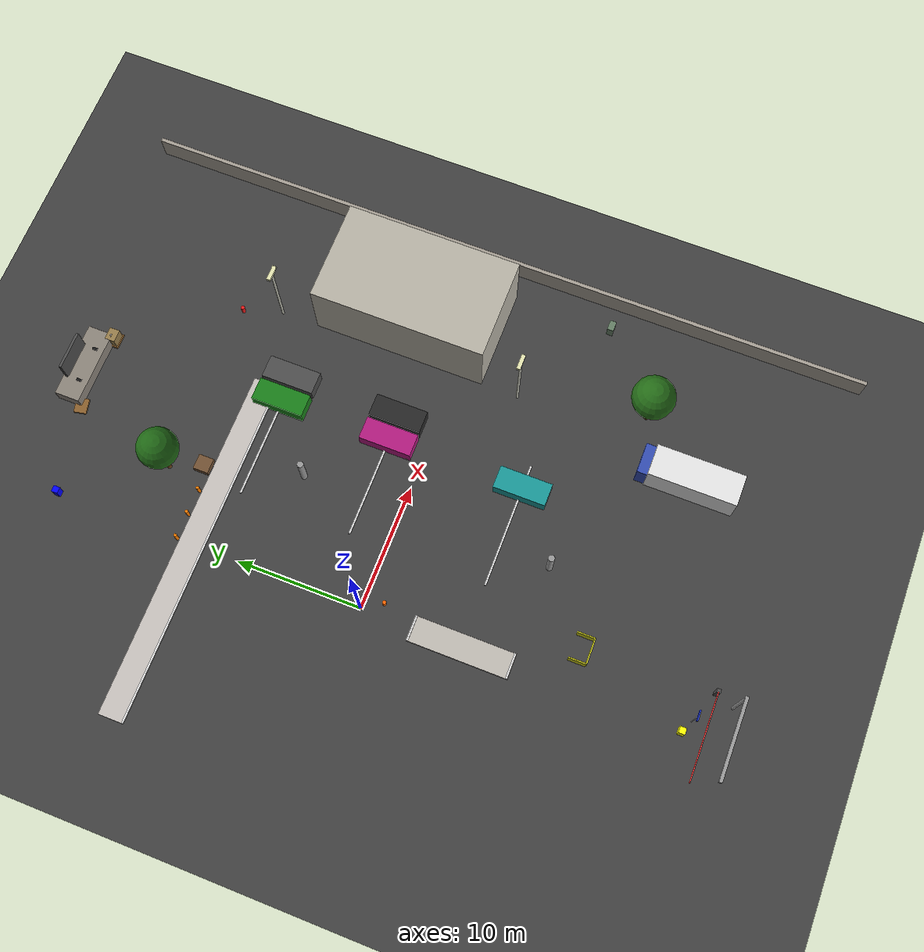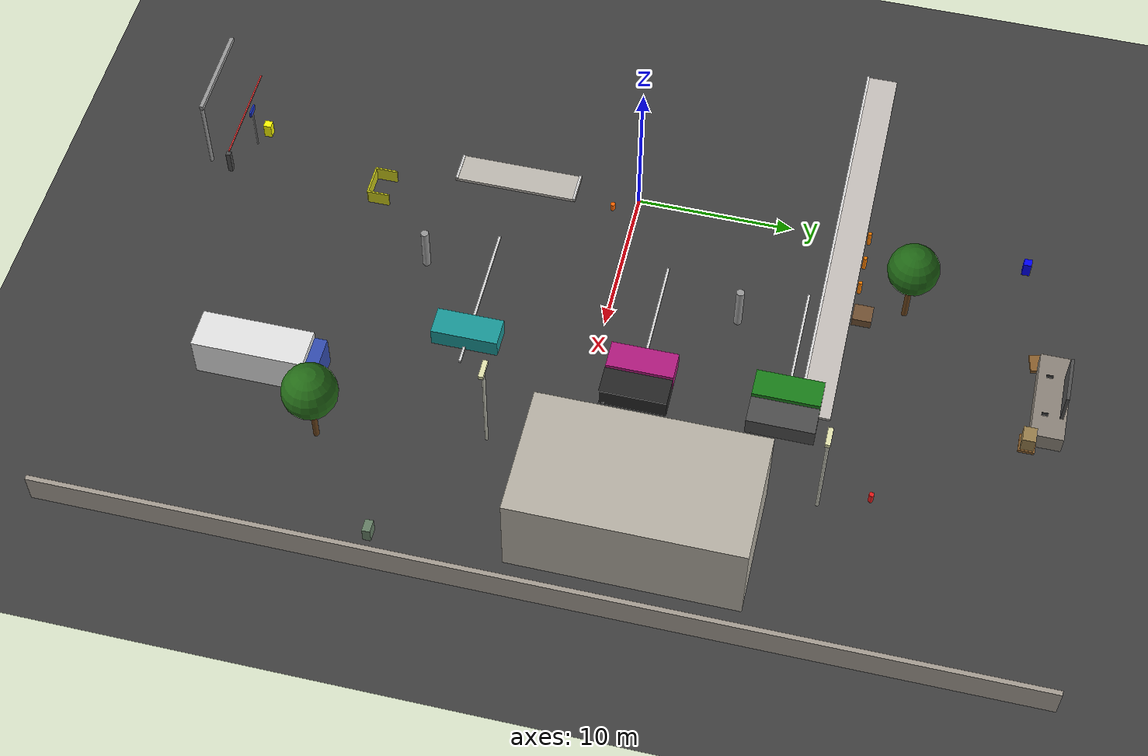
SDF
<sdf version="1.9">
 <world name="togo_parking_lot">
  <model name="ground_plane">
   <static>true</static>
   <link name="link">
    <collision name="collision">
     <geometry><plane><normal>0 0 1</normal><size>200 200</size></plane></geometry>
    </collision>
    <visual name="visual">
     <geometry><plane><normal>0 0 1</normal><size>200 200</size></plane></geometry>
     <material><ambient>0.2 0.2 0.2 1</ambient><diffuse>0.25 0.25 0.25 1</diffuse></material>
    </visual>
   </link>
  </model>
  <model name="wall_east">
   <static>true</static>
   <pose>30 0 1 0 0 0</pose>
   <link name="link">
    <collision name="collision"><geometry><box><size>0.3 60 2</size></box></geometry></collision>
    <visual name="visual">
     <geometry><box><size>0.3 60 2</size></box></geometry>
     <material><ambient>0.65 0.62 0.58 1</ambient><diffuse>0.65 0.62 0.58 1</diffuse></material>
    </visual>
   </link>
  </model>
  <model name="building_side_east">
   <static>true</static>
   <pose>24 5 3 0 0 0</pose>
   <link name="link">
    <collision name="collision"><geometry><box><size>8 14 6</size></box></geometry></collision>
    <visual name="visual">
     <geometry><box><size>8 14 6</size></box></geometry>
     <material><ambient>0.72 0.70 0.65 1</ambient><diffuse>0.72 0.70 0.65 1</diffuse></material>
    </visual>
   </link>
  </model>
  <model name="curb_row_a_east">
   <static>true</static>
   <pose>10 12 0.08 0 0 0</pose>
   <link name="link">
    <collision name="collision"><geometry><box><size>10 0.15 0.16</size></box></geometry></collision>
    <visual name="visual">
     <geometry><box><size>10 0.15 0.16</size></box></geometry>
     <material><ambient>0.85 0.85 0.85 1</ambient><diffuse>0.85 0.85 0.85 1</diffuse></material>
    </visual>
   </link>
  </model>
  <model name="curb_row_b_east">
   <static>true</static>
   <pose>10 3 0.08 0 0 0</pose>
   <link name="link">
    <collision name="collision"><geometry><box><size>10 0.15 0.16</size></box></geometry></collision>
    <visual name="visual">
     <geometry><box><size>10 0.15 0.16</size></box></geometry>
     <material><ambient>0.85 0.85 0.85 1</ambient><diffuse>0.85 0.85 0.85 1</diffuse></material>
    </visual>
   </link>
  </model>
  <model name="curb_row_c_east">
   <static>true</static>
   <pose>10 -8 0.08 0 0 0</pose>
   <link name="link">
    <collision name="collision"><geometry><box><size>10 0.15 0.16</size></box></geometry></collision>
    <visual name="visual">
     <geometry><box><size>10 0.15 0.16</size></box></geometry>
     <material><ambient>0.85 0.85 0.85 1</ambient><diffuse>0.85 0.85 0.85 1</diffuse></material>
    </visual>
   </link>
  </model>
  <model name="car_a4">
   <static>true</static>
   <pose>13 12 0.4 0 0 0</pose>
   <link name="link">
    <collision name="collision"><geometry><box><size>1.8 4.2 1.5</size></box></geometry></collision>
    <visual name="visual">
     <geometry><box><size>1.8 4.2 1.5</size></box></geometry>
     <material><ambient>0.1 0.5 0.1 1</ambient><diffuse>0.1 0.5 0.1 1</diffuse></material>
    </visual>
   </link>
  </model>
  <model name="car_a5">
   <static>true</static>
   <pose>15 12 0.4 0 0 0</pose>
   <link name="link">
    <collision name="collision"><geometry><box><size>1.8 4.2 1.5</size></box></geometry></collision>
    <visual name="visual">
     <geometry><box><size>1.8 4.2 1.5</size></box></geometry>
     <material><ambient>0.3 0.3 0.3 1</ambient><diffuse>0.3 0.3 0.3 1</diffuse></material>
    </visual>
   </link>
  </model>
  <model name="car_b3">
   <static>true</static>
   <pose>13 3 0.4 0 0 0</pose>
   <link name="link">
    <collision name="collision"><geometry><box><size>1.8 4.2 1.5</size></box></geometry></collision>
    <visual name="visual">
     <geometry><box><size>1.8 4.2 1.5</size></box></geometry>
     <material><ambient>0.7 0.1 0.5 1</ambient><diffuse>0.7 0.1 0.5 1</diffuse></material>
    </visual>
   </link>
  </model>
  <model name="car_b4">
   <static>true</static>
   <pose>15 3 0.4 0 0 0</pose>
   <link name="link">
    <collision name="collision"><geometry><box><size>1.8 4.2 1.6</size></box></geometry></collision>
    <visual name="visual">
     <geometry><box><size>1.8 4.2 1.6</size></box></geometry>
     <material><ambient>0.15 0.15 0.15 1</ambient><diffuse>0.15 0.15 0.15 1</diffuse></material>
    </visual>
   </link>
  </model>
  <model name="car_c3">
   <static>true</static>
   <pose>13 -8 0.4 0 0 0</pose>
   <link name="link">
    <collision name="collision"><geometry><box><size>1.8 4.2 1.5</size></box></geometry></collision>
    <visual name="visual">
     <geometry><box><size>1.8 4.2 1.5</size></box></geometry>
     <material><ambient>0.1 0.6 0.6 1</ambient><diffuse>0.1 0.6 0.6 1</diffuse></material>
    </visual>
   </link>
  </model>
  <model name="lightpole_1">
   <static>true</static>
   <pose>20 15 3.5 0 0 0</pose>
   <link name="link">
    <collision name="collision">
     <geometry><cylinder><radius>0.1</radius><length>7</length></cylinder></geometry>
    </collision>
    <visual name="visual">
     <geometry><cylinder><radius>0.1</radius><length>7</length></cylinder></geometry>
     <material><ambient>0.7 0.7 0.65 1</ambient><diffuse>0.7 0.7 0.65 1</diffuse></material>
    </visual>
   </link>
  </model>
  <model name="lightpole_1_head">
   <static>true</static>
   <pose>20 15 7.2 0 0 0</pose>
   <link name="link">
    <collision name="collision"><geometry><box><size>1.2 0.3 0.25</size></box></geometry></collision>
    <visual name="visual">
     <geometry><box><size>1.2 0.3 0.25</size></box></geometry>
     <material><ambient>0.9 0.9 0.7 1</ambient><diffuse>0.9 0.9 0.7 1</diffuse></material>
    </visual>
   </link>
  </model>
  <model name="lightpole_3">
   <static>true</static>
   <pose>20 -5 3.5 0 0 0</pose>
   <link name="link">
    <collision name="collision">
     <geometry><cylinder><radius>0.1</radius><length>7</length></cylinder></geometry>
    </collision>
    <visual name="visual">
     <geometry><cylinder><radius>0.1</radius><length>7</length></cylinder></geometry>
     <material><ambient>0.7 0.7 0.65 1</ambient><diffuse>0.7 0.7 0.65 1</diffuse></material>
    </visual>
   </link>
  </model>
  <model name="lightpole_3_head">
   <static>true</static>
   <pose>20 -5 7.2 0 0 0</pose>
   <link name="link">
    <collision name="collision"><geometry><box><size>1.2 0.3 0.25</size></box></geometry></collision>
    <visual name="visual">
     <geometry><box><size>1.2 0.3 0.25</size></box></geometry>
     <material><ambient>0.9 0.9 0.7 1</ambient><diffuse>0.9 0.9 0.7 1</diffuse></material>
    </visual>
   </link>
  </model>
  <model name="tree_1_trunk">
   <static>true</static>
   <pose>5 18 1.2 0 0 0</pose>
   <link name="link">
    <collision name="collision">
     <geometry><cylinder><radius>0.18</radius><length>2.4</length></cylinder></geometry>
    </collision>
    <visual name="visual">
     <geometry><cylinder><radius>0.18</radius><length>2.4</length></cylinder></geometry>
     <material><ambient>0.4 0.25 0.1 1</ambient><diffuse>0.4 0.25 0.1 1</diffuse></material>
    </visual>
   </link>
  </model>
  <model name="tree_1_canopy">
   <static>true</static>
   <pose>5 18 4.5 0 0 0</pose>
   <link name="link">
    <collision name="collision"><geometry><sphere><radius>1.6</radius></sphere></geometry></collision>
    <visual name="visual">
     <geometry><sphere><radius>1.6</radius></sphere></geometry>
     <material><ambient>0.12 0.40 0.08 1</ambient><diffuse>0.12 0.40 0.08 1</diffuse></material>
    </visual>
   </link>
  </model>
  <model name="tree_3_trunk">
   <static>true</static>
   <pose>22 -15 1.2 0 0 0</pose>
   <link name="link">
    <collision name="collision">
     <geometry><cylinder><radius>0.18</radius><length>2.4</length></cylinder></geometry>
    </collision>
    <visual name="visual">
     <geometry><cylinder><radius>0.18</radius><length>2.4</length></cylinder></geometry>
     <material><ambient>0.4 0.25 0.1 1</ambient><diffuse>0.4 0.25 0.1 1</diffuse></material>
    </visual>
   </link>
  </model>
  <model name="tree_3_canopy">
   <static>true</static>
   <pose>22 -15 4.5 0 0 0</pose>
   <link name="link">
    <collision name="collision"><geometry><sphere><radius>1.7</radius></sphere></geometry></collision>
    <visual name="visual">
     <geometry><sphere><radius>1.7</radius></sphere></geometry>
     <material><ambient>0.14 0.42 0.09 1</ambient><diffuse>0.14 0.42 0.09 1</diffuse></material>
    </visual>
   </link>
  </model>
  <model name="planter_right">
   <static>true</static>
   <pose>6 15.5 0.3 0 0 0</pose>
   <link name="link">
    <collision name="collision"><geometry><box><size>1.2 1.2 0.6</size></box></geometry></collision>
    <visual name="visual">
     <geometry><box><size>1.2 1.2 0.6</size></box></geometry>
     <material><ambient>0.45 0.32 0.2 1</ambient><diffuse>0.45 0.32 0.2 1</diffuse></material>
    </visual>
   </link>
  </model>
  <model name="pillar_ne">
   <static>true</static>
   <pose>8 8 1.5 0 0 0</pose>
   <link name="link">
    <collision name="collision">
     <geometry><cylinder><radius>0.25</radius><length>3.0</length></cylinder></geometry>
    </collision>
    <visual name="visual">
     <geometry><cylinder><radius>0.25</radius><length>3.0</length></cylinder></geometry>
     <material><ambient>0.6 0.6 0.6 1</ambient><diffuse>0.6 0.6 0.6 1</diffuse></material>
    </visual>
   </link>
  </model>
  <model name="pillar_se">
   <static>true</static>
   <pose>8 -12 1.5 0 0 0</pose>
   <link name="link">
    <collision name="collision">
     <geometry><cylinder><radius>0.25</radius><length>3.0</length></cylinder></geometry>
    </collision>
    <visual name="visual">
     <geometry><cylinder><radius>0.25</radius><length>3.0</length></cylinder></geometry>
     <material><ambient>0.6 0.6 0.6 1</ambient><diffuse>0.6 0.6 0.6 1</diffuse></material>
    </visual>
   </link>
  </model>
  <model name="corral_1_back">
   <static>true</static>
   <pose>3 -17 0.5 0 0 0</pose>
   <link name="link">
    <collision name="collision"><geometry><box><size>2.0 0.1 1.0</size></box></geometry></collision>
    <visual name="visual">
     <geometry><box><size>2.0 0.1 1.0</size></box></geometry>
     <material><ambient>0.8 0.8 0.1 1</ambient><diffuse>0.8 0.8 0.1 1</diffuse></material>
    </visual>
   </link>
  </model>
  <model name="corral_1_left">
   <static>true</static>
   <pose>2.0 -16.3 0.5 0 0 0</pose>
   <link name="link">
    <collision name="collision"><geometry><box><size>0.1 1.4 1.0</size></box></geometry></collision>
    <visual name="visual">
     <geometry><box><size>0.1 1.4 1.0</size></box></geometry>
     <material><ambient>0.8 0.8 0.1 1</ambient><diffuse>0.8 0.8 0.1 1</diffuse></material>
    </visual>
   </link>
  </model>
  <model name="corral_1_right">
   <static>true</static>
   <pose>4.0 -16.3 0.5 0 0 0</pose>
   <link name="link">
    <collision name="collision"><geometry><box><size>0.1 1.4 1.0</size></box></geometry></collision>
    <visual name="visual">
     <geometry><box><size>0.1 1.4 1.0</size></box></geometry>
     <material><ambient>0.8 0.8 0.1 1</ambient><diffuse>0.8 0.8 0.1 1</diffuse></material>
    </visual>
   </link>
  </model>
  <model name="hydrant_1">
   <static>true</static>
   <pose>19 18 0.35 0 0 0</pose>
   <link name="link">
    <collision name="collision">
     <geometry><cylinder><radius>0.15</radius><length>0.7</length></cylinder></geometry>
    </collision>
    <visual name="visual">
     <geometry><cylinder><radius>0.15</radius><length>0.7</length></cylinder></geometry>
     <material><ambient>0.9 0.1 0.1 1</ambient><diffuse>0.9 0.1 0.1 1</diffuse></material>
    </visual>
   </link>
  </model>
  <model name="sign_pole_1">
   <static>true</static>
   <pose>1 -25.5 1.5 0 0 0</pose>
   <link name="link">
    <collision name="collision">
     <geometry><cylinder><radius>0.05</radius><length>3.0</length></cylinder></geometry>
    </collision>
    <visual name="visual">
     <geometry><cylinder><radius>0.05</radius><length>3.0</length></cylinder></geometry>
     <material><ambient>0.7 0.7 0.7 1</ambient><diffuse>0.7 0.7 0.7 1</diffuse></material>
    </visual>
   </link>
  </model>
  <model name="sign_board_1">
   <static>true</static>
   <pose>1 -25.5 3.2 0 0 0</pose>
   <link name="link">
    <collision name="collision"><geometry><box><size>0.8 0.1 0.4</size></box></geometry></collision>
    <visual name="visual">
     <geometry><box><size>0.8 0.1 0.4</size></box></geometry>
     <material><ambient>0.1 0.2 0.8 1</ambient><diffuse>0.1 0.2 0.8 1</diffuse></material>
    </visual>
   </link>
  </model>
  <model name="entry_arch_right">
   <static>true</static>
   <pose>3 -28 2.5 0 0 0</pose>
   <link name="link">
    <collision name="collision">
     <geometry><cylinder><radius>0.12</radius><length>5.0</length></cylinder></geometry>
    </collision>
    <visual name="visual">
     <geometry><cylinder><radius>0.12</radius><length>5.0</length></cylinder></geometry>
     <material><ambient>0.6 0.6 0.6 1</ambient><diffuse>0.6 0.6 0.6 1</diffuse></material>
    </visual>
   </link>
  </model>
  <model name="entry_arch_top">
   <static>true</static>
   <pose>0 -28 5.1 0 0 0</pose>
   <link name="link">
    <collision name="collision"><geometry><box><size>6.2 0.25 0.3</size></box></geometry></collision>
    <visual name="visual">
     <geometry><box><size>6.2 0.25 0.3</size></box></geometry>
     <material><ambient>0.6 0.6 0.6 1</ambient><diffuse>0.6 0.6 0.6 1</diffuse></material>
    </visual>
   </link>
  </model>
  <model name="median_island">
   <static>true</static>
   <pose>0 -8 0.1 0 0 0</pose>
   <link name="link">
    <collision name="collision"><geometry><box><size>2.0 8.0 0.2</size></box></geometry></collision>
    <visual name="visual">
     <geometry><box><size>2.0 8.0 0.2</size></box></geometry>
     <material><ambient>0.75 0.73 0.70 1</ambient><diffuse>0.75 0.73 0.70 1</diffuse></material>
    </visual>
   </link>
  </model>
  <model name="median_curb_n">
   <static>true</static>
   <pose>0 -4.1 0.18 0 0 0</pose>
   <link name="link">
    <collision name="collision"><geometry><box><size>2.0 0.15 0.16</size></box></geometry></collision>
    <visual name="visual">
     <geometry><box><size>2.0 0.15 0.16</size></box></geometry>
     <material><ambient>0.85 0.85 0.85 1</ambient><diffuse>0.85 0.85 0.85 1</diffuse></material>
    </visual>
   </link>
  </model>
  <model name="median_curb_s">
   <static>true</static>
   <pose>0 -11.9 0.18 0 0 0</pose>
   <link name="link">
    <collision name="collision"><geometry><box><size>2.0 0.15 0.16</size></box></geometry></collision>
    <visual name="visual">
     <geometry><box><size>2.0 0.15 0.16</size></box></geometry>
     <material><ambient>0.85 0.85 0.85 1</ambient><diffuse>0.85 0.85 0.85 1</diffuse></material>
    </visual>
   </link>
  </model>
  <model name="utility_box_1">
   <static>true</static>
   <pose>28 -10 0.5 0 0 0</pose>
   <link name="link">
    <collision name="collision"><geometry><box><size>0.8 0.5 1.0</size></box></geometry></collision>
    <visual name="visual">
     <geometry><box><size>0.8 0.5 1.0</size></box></geometry>
     <material><ambient>0.4 0.5 0.4 1</ambient><diffuse>0.4 0.5 0.4 1</diffuse></material>
    </visual>
   </link>
  </model>
  <model name="wheelstop_a4">
   <static>true</static>
   <pose>13 10.2 0.06 0 0 0</pose>
   <link name="link">
    <collision name="c"><geometry><box><size>1.8 0.15 0.12</size></box></geometry></collision>
    <visual name="v">
     <geometry><box><size>1.8 0.15 0.12</size></box></geometry>
     <material><ambient>0.75 0.75 0.75 1</ambient><diffuse>0.75 0.75 0.75 1</diffuse></material>
    </visual>
   </link>
  </model>
  <model name="wheelstop_a5">
   <static>true</static>
   <pose>15 10.2 0.06 0 0 0</pose>
   <link name="link">
    <collision name="c"><geometry><box><size>1.8 0.15 0.12</size></box></geometry></collision>
    <visual name="v">
     <geometry><box><size>1.8 0.15 0.12</size></box></geometry>
     <material><ambient>0.75 0.75 0.75 1</ambient><diffuse>0.75 0.75 0.75 1</diffuse></material>
    </visual>
   </link>
  </model>
  <model name="wheelstop_b3">
   <static>true</static>
   <pose>13 1.2 0.06 0 0 0</pose>
   <link name="link">
    <collision name="c"><geometry><box><size>1.8 0.15 0.12</size></box></geometry></collision>
    <visual name="v">
     <geometry><box><size>1.8 0.15 0.12</size></box></geometry>
     <material><ambient>0.75 0.75 0.75 1</ambient><diffuse>0.75 0.75 0.75 1</diffuse></material>
    </visual>
   </link>
  </model>
  <model name="wheelstop_b4">
   <static>true</static>
   <pose>15 1.2 0.06 0 0 0</pose>
   <link name="link">
    <collision name="c"><geometry><box><size>1.8 0.15 0.12</size></box></geometry></collision>
    <visual name="v">
     <geometry><box><size>1.8 0.15 0.12</size></box></geometry>
     <material><ambient>0.75 0.75 0.75 1</ambient><diffuse>0.75 0.75 0.75 1</diffuse></material>
    </visual>
   </link>
  </model>
  <model name="wheelstop_c3">
   <static>true</static>
   <pose>13 -9.8 0.06 0 0 0</pose>
   <link name="link">
    <collision name="c"><geometry><box><size>1.8 0.15 0.12</size></box></geometry></collision>
    <visual name="v">
     <geometry><box><size>1.8 0.15 0.12</size></box></geometry>
     <material><ambient>0.75 0.75 0.75 1</ambient><diffuse>0.75 0.75 0.75 1</diffuse></material>
    </visual>
   </link>
  </model>
  <model name="loading_dock_platform">
   <static>true</static>
   <pose>10 27.5 0.6 0 0 0</pose>
   <link name="link">
    <collision name="collision"><geometry><box><size>6.0 2.0 1.2</size></box></geometry></collision>
    <visual name="visual">
     <geometry><box><size>6.0 2.0 1.2</size></box></geometry>
     <material><ambient>0.55 0.52 0.48 1</ambient><diffuse>0.55 0.52 0.48 1</diffuse></material>
    </visual>
   </link>
  </model>
  <model name="dock_door_frame">
   <static>true</static>
   <pose>10 28.2 2.0 0 0 0</pose>
   <link name="link">
    <collision name="collision"><geometry><box><size>3.0 0.2 2.5</size></box></geometry></collision>
    <visual name="visual">
     <geometry><box><size>3.0 0.2 2.5</size></box></geometry>
     <material><ambient>0.3 0.3 0.3 1</ambient><diffuse>0.3 0.3 0.3 1</diffuse></material>
    </visual>
   </link>
  </model>
  <model name="dock_bumper_l">
   <static>true</static>
   <pose>8.6 27.2 1.0 0 0 0</pose>
   <link name="link">
    <collision name="collision"><geometry><box><size>0.2 0.4 0.5</size></box></geometry></collision>
    <visual name="visual">
     <geometry><box><size>0.2 0.4 0.5</size></box></geometry>
     <material><ambient>0.1 0.1 0.1 1</ambient><diffuse>0.1 0.1 0.1 1</diffuse></material>
    </visual>
   </link>
  </model>
  <model name="dock_bumper_r">
   <static>true</static>
   <pose>11.4 27.2 1.0 0 0 0</pose>
   <link name="link">
    <collision name="collision"><geometry><box><size>0.2 0.4 0.5</size></box></geometry></collision>
    <visual name="visual">
     <geometry><box><size>0.2 0.4 0.5</size></box></geometry>
     <material><ambient>0.1 0.1 0.1 1</ambient><diffuse>0.1 0.1 0.1 1</diffuse></material>
    </visual>
   </link>
  </model>
  <model name="bollard_2">
   <static>true</static>
   <pose>0 15.0 0.5 0 0 0</pose>
   <link name="link">
    <collision name="c">
     <geometry><cylinder><radius>0.12</radius><length>1.0</length></cylinder></geometry>
    </collision>
    <visual name="v">
     <geometry><cylinder><radius>0.12</radius><length>1.0</length></cylinder></geometry>
     <material><ambient>1.0 0.5 0.0 1</ambient><diffuse>1.0 0.5 0.0 1</diffuse></material>
    </visual>
   </link>
  </model>
  <model name="bollard_3">
   <static>true</static>
   <pose>2 15.0 0.5 0 0 0</pose>
   <link name="link">
    <collision name="c">
     <geometry><cylinder><radius>0.12</radius><length>1.0</length></cylinder></geometry>
    </collision>
    <visual name="v">
     <geometry><cylinder><radius>0.12</radius><length>1.0</length></cylinder></geometry>
     <material><ambient>1.0 0.5 0.0 1</ambient><diffuse>1.0 0.5 0.0 1</diffuse></material>
    </visual>
   </link>
  </model>
  <model name="bollard_4">
   <static>true</static>
   <pose>4 15.0 0.5 0 0 0</pose>
   <link name="link">
    <collision name="c">
     <geometry><cylinder><radius>0.12</radius><length>1.0</length></cylinder></geometry>
    </collision>
    <visual name="v">
     <geometry><cylinder><radius>0.12</radius><length>1.0</length></cylinder></geometry>
     <material><ambient>1.0 0.5 0.0 1</ambient><diffuse>1.0 0.5 0.0 1</diffuse></material>
    </visual>
   </link>
  </model>
  <model name="gate_post_r">
   <static>true</static>
   <pose>3.5 -26.5 0.8 0 0 0</pose>
   <link name="link">
    <collision name="collision"><geometry><box><size>0.3 0.3 1.6</size></box></geometry></collision>
    <visual name="visual">
     <geometry><box><size>0.3 0.3 1.6</size></box></geometry>
     <material><ambient>0.3 0.3 0.3 1</ambient><diffuse>0.3 0.3 0.3 1</diffuse></material>
    </visual>
   </link>
  </model>
  <model name="gate_arm">
   <static>true</static>
   <pose>0 -26.5 1.65 0 0 0</pose>
   <link name="link">
    <collision name="collision"><geometry><box><size>6.8 0.08 0.1</size></box></geometry></collision>
    <visual name="visual">
     <geometry><box><size>6.8 0.08 0.1</size></box></geometry>
     <material><ambient>0.9 0.2 0.2 1</ambient><diffuse>0.9 0.2 0.2 1</diffuse></material>
    </visual>
   </link>
  </model>
  <model name="truck_body">
   <static>true</static>
   <pose>18 -20 1.4 0 0 0</pose>
   <link name="link">
    <collision name="collision"><geometry><box><size>2.5 7.0 2.8</size></box></geometry></collision>
    <visual name="visual">
     <geometry><box><size>2.5 7.0 2.8</size></box></geometry>
     <material><ambient>0.9 0.9 0.9 1</ambient><diffuse>0.9 0.9 0.9 1</diffuse></material>
    </visual>
   </link>
  </model>
  <model name="truck_cab">
   <static>true</static>
   <pose>18 -16.8 1.2 0 0 0</pose>
   <link name="link">
    <collision name="collision"><geometry><box><size>2.4 2.2 2.2</size></box></geometry></collision>
    <visual name="visual">
     <geometry><box><size>2.4 2.2 2.2</size></box></geometry>
     <material><ambient>0.2 0.3 0.7 1</ambient><diffuse>0.2 0.3 0.7 1</diffuse></material>
    </visual>
   </link>
  </model>
  <model name="sidewalk_main">
   <static>true</static>
   <pose>0 13.8 0.08 0 0 0</pose>
   <link name="link">
    <collision name="collision"><geometry><box><size>28.0 2.0 0.16</size></box></geometry></collision>
    <visual name="visual">
     <geometry><box><size>28.0 2.0 0.16</size></box></geometry>
     <material><ambient>0.78 0.76 0.74 1</ambient><diffuse>0.78 0.76 0.74 1</diffuse></material>
    </visual>
   </link>
  </model>
  <model name="sidewalk_curb_front">
   <static>true</static>
   <pose>0 12.85 0.18 0 0 0</pose>
   <link name="link">
    <collision name="collision"><geometry><box><size>28.0 0.15 0.16</size></box></geometry></collision>
    <visual name="visual">
     <geometry><box><size>28.0 0.15 0.16</size></box></geometry>
     <material><ambient>0.88 0.88 0.88 1</ambient><diffuse>0.88 0.88 0.88 1</diffuse></material>
    </visual>
   </link>
  </model>
  <model name="cone_1">
   <static>true</static>
   <pose>1 -1.5 0.25 0 0 -0.3</pose>
   <link name="link">
    <collision name="collision">
     <geometry><cylinder><radius>0.15</radius><length>0.5</length></cylinder></geometry>
    </collision>
    <visual name="visual">
     <geometry><cylinder><radius>0.15</radius><length>0.5</length></cylinder></geometry>
     <material><ambient>1.0 0.4 0.0 1</ambient><diffuse>1.0 0.4 0.0 1</diffuse></material>
    </visual>
   </link>
  </model>
  <model name="pallet_0">
   <static>true</static>
   <pose>7 26.5 0.1 0 0 0.2</pose>
   <link name="link">
    <collision name="collision"><geometry><box><size>1.2 1.0 0.2</size></box></geometry></collision>
    <visual name="visual">
     <geometry><box><size>1.2 1.0 0.2</size></box></geometry>
     <material><ambient>0.55 0.38 0.18 1</ambient><diffuse>0.55 0.38 0.18 1</diffuse></material>
    </visual>
   </link>
  </model>
  <model name="pallet_1">
   <static>true</static>
   <pose>13 26.5 0.1 0 0 0</pose>
   <link name="link">
    <collision name="collision"><geometry><box><size>1.2 1.0 0.2</size></box></geometry></collision>
    <visual name="visual">
     <geometry><box><size>1.2 1.0 0.2</size></box></geometry>
     <material><ambient>0.55 0.38 0.18 1</ambient><diffuse>0.55 0.38 0.18 1</diffuse></material>
    </visual>
   </link>
  </model>
  <model name="stacked_boxes">
   <static>true</static>
   <pose>13 26.5 0.7 0 0 0</pose>
   <link name="link">
    <collision name="collision"><geometry><box><size>1.0 0.8 1.0</size></box></geometry></collision>
    <visual name="visual">
     <geometry><box><size>1.0 0.8 1.0</size></box></geometry>
     <material><ambient>0.6 0.5 0.3 1</ambient><diffuse>0.6 0.5 0.3 1</diffuse></material>
    </visual>
   </link>
  </model>
  <model name="target_red">
   <static>true</static>
   <pose>25 0 0.5 0 0 0</pose>
   <link name="link">
    <collision name="collision"><geometry><box><size>0.5 0.5 1</size></box></geometry></collision>
    <visual name="visual">
     <geometry><box><size>0.5 0.5 1</size></box></geometry>
     <material><ambient>1 0 0 1</ambient><diffuse>1 0 0 1</diffuse></material>
    </visual>
   </link>
  </model>
  <model name="target_blue">
   <static>true</static>
   <pose>0 25 0.5 0 0 0</pose>
   <link name="link">
    <collision name="collision"><geometry><box><size>0.5 0.5 1</size></box></geometry></collision>
    <visual name="visual">
     <geometry><box><size>0.5 0.5 1</size></box></geometry>
     <material><ambient>0 0 1 1</ambient><diffuse>0 0 1 1</diffuse></material>
    </visual>
   </link>
  </model>
  <model name="target_yellow">
   <static>true</static>
   <pose>0 -25 0.5 0 0 0</pose>
   <link name="link">
    <collision name="collision"><geometry><box><size>0.5 0.5 1</size></box></geometry></collision>
    <visual name="visual">
     <geometry><box><size>0.5 0.5 1</size></box></geometry>
     <material><ambient>1 1 0 1</ambient><diffuse>1 1 0 1</diffuse></material>
    </visual>
   </link>
  </model>
 </world>
</sdf>
